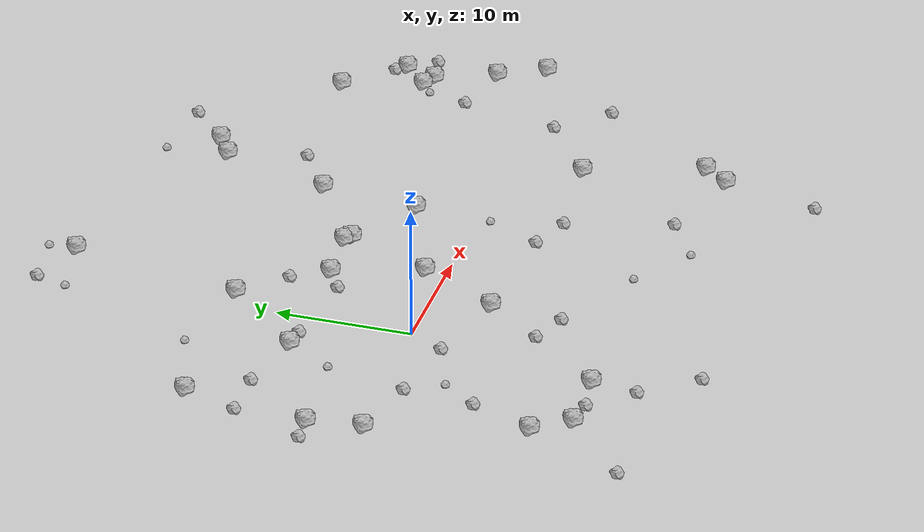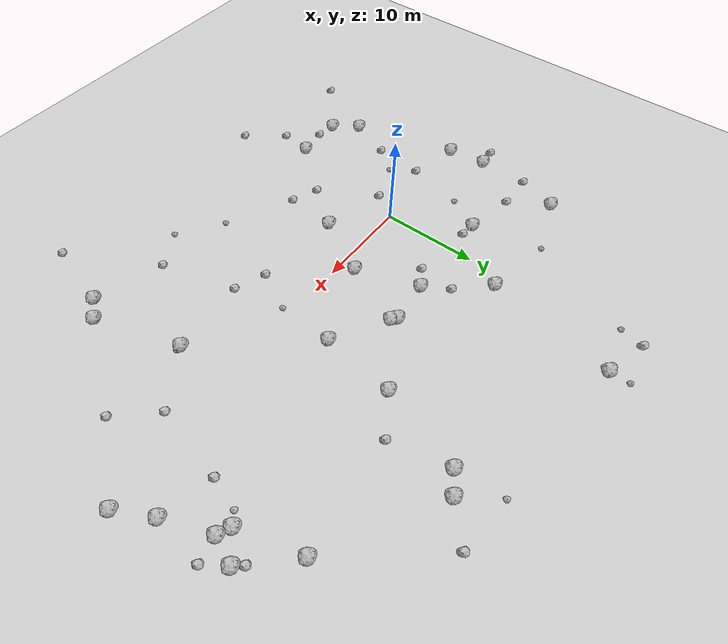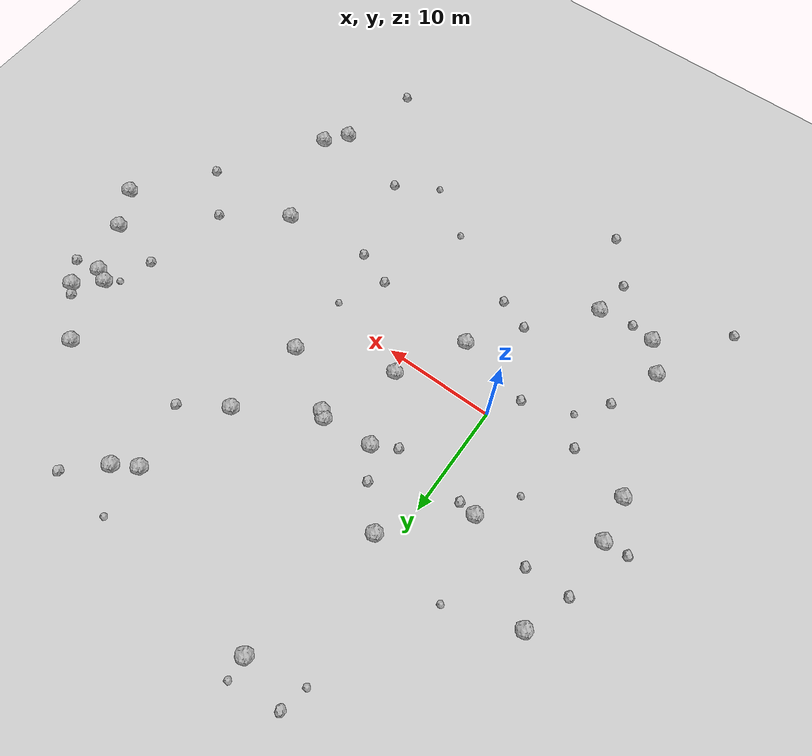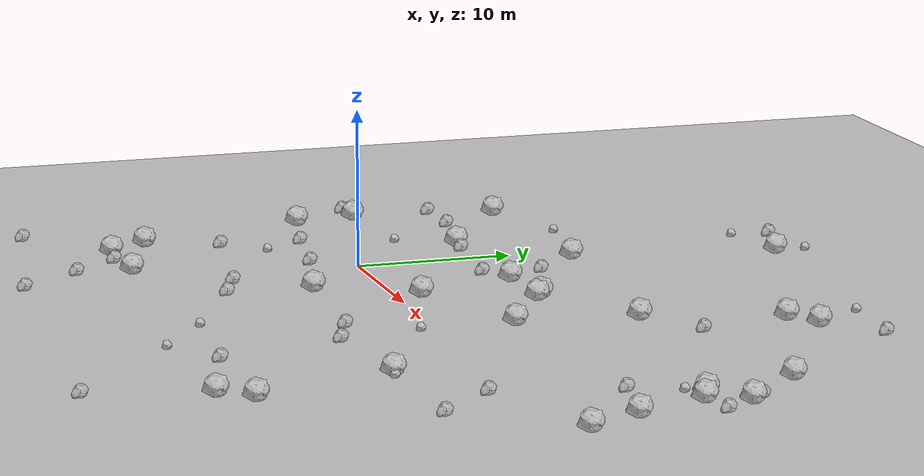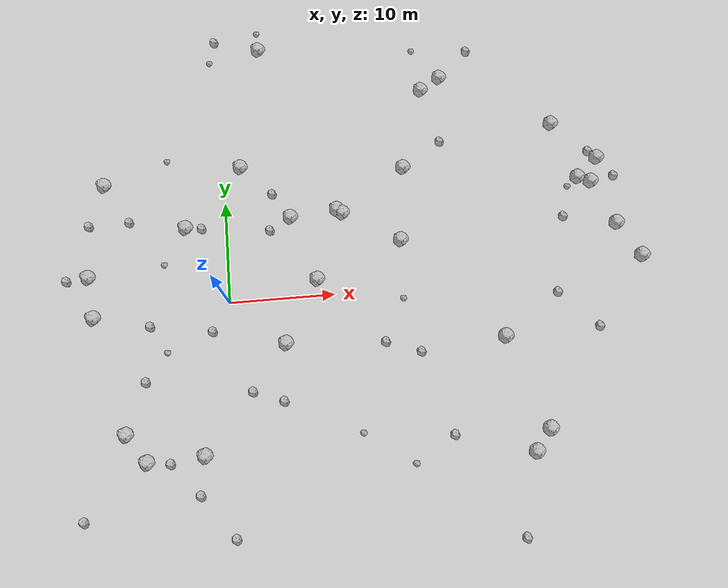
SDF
<sdf version="1.6">
 <world name="default">
  <include><uri>model://custom_ground</uri></include>
  <include><uri>model://sun</uri></include>
  <model name="rock1_0_0">
   <include><uri>model://rock1</uri><pose>-9.71555381848496 -11.462800521649633 0.5 0 0 0</pose></include>
  </model>
  <model name="rock1_0_1">
   <include><uri>model://rock1</uri><pose>33.012249444664626 15.732189921044622 0.5 0 0 0</pose></include>
  </model>
  <model name="rock1_0_2">
   <include><uri>model://rock1</uri><pose>-2.6610322005692346 -13.892146646583857 0.5 0 0 0</pose></include>
  </model>
  <model name="rock1_0_3">
   <include><uri>model://rock1</uri><pose>11.343023795016094 8.002617359840393 0.5 0 0 0</pose></include>
  </model>
  <model name="rock1_0_4">
   <include><uri>model://rock1</uri><pose>26.891499211915253 -15.973941546690448 0.5 0 0 0</pose></include>
  </model>
  <model name="rock1_0_5">
   <include><uri>model://rock1</uri><pose>-3.9119274705224036 7.720105783129689 0.5 0 0 0</pose></include>
  </model>
  <model name="rock1_0_6">
   <include><uri>model://rock1</uri><pose>37.793475113117815 4.770822017862116 0.5 0 0 0</pose></include>
  </model>
  <model name="rock1_0_7">
   <include><uri>model://rock1</uri><pose>36.00149346547439 9.25231353364763 0.5 0 0 0</pose></include>
  </model>
  <model name="rock1_0_8">
   <include><uri>model://rock1</uri><pose>-11.788210217342206 12.76895249197841 0.5 0 0 0</pose></include>
  </model>
  <model name="rock1_0_9">
   <include><uri>model://rock1</uri><pose>-7.843985306245839 -14.037542996310147 0.5 0 0 0</pose></include>
  </model>
  <model name="rock1_0_10">
   <include><uri>model://rock1</uri><pose>4.049735617796667 26.567867269111986 0.5 0 0 0</pose></include>
  </model>
  <model name="rock1_0_11">
   <include><uri>model://rock1</uri><pose>8.454805740521142 1.564320129808202 0.5 0 0 0</pose></include>
  </model>
  <model name="rock1_0_12">
   <include><uri>model://rock1</uri><pose>17.706860088040706 12.249815178051726 0.5 0 0 0</pose></include>
  </model>
  <model name="rock1_0_13">
   <include><uri>model://rock1</uri><pose>6.289367280612904 7.993429714953152 0.5 0 0 0</pose></include>
  </model>
  <model name="rock1_0_14">
   <include><uri>model://rock1</uri><pose>16.75083652591755 4.8069718419666785 0.5 0 0 0</pose></include>
  </model>
  <model name="rock1_0_15">
   <include><uri>model://rock1</uri><pose>39.66175471702922 1.3362825235050835 0.5 0 0 0</pose></include>
  </model>
  <model name="rock1_0_16">
   <include><uri>model://rock1</uri><pose>36.9854462198996 11.69511256799273 0.5 0 0 0</pose></include>
  </model>
  <model name="rock1_0_17">
   <include><uri>model://rock1</uri><pose>10.832708672551512 8.42902878941868 0.5 0 0 0</pose></include>
  </model>
  <model name="rock1_0_18">
   <include><uri>model://rock1</uri><pose>28.430271240194656 -14.085184852996552 0.5 0 0 0</pose></include>
  </model>
  <model name="rock1_0_19">
   <include><uri>model://rock1</uri><pose>34.779293022524094 9.793548759535028 0.5 0 0 0</pose></include>
  </model>
  <model name="rock1_0_20">
   <include><uri>model://rock1</uri><pose>20.354891933034942 20.570803612729 0.5 0 0 0</pose></include>
  </model>
  <model name="rock1_0_21">
   <include><uri>model://rock1</uri><pose>1.6570915613505264 13.608310073899268 0.5 0 0 0</pose></include>
  </model>
  <model name="rock1_0_22">
   <include><uri>model://rock1</uri><pose>5.131230323033968 -4.332906194362913 0.5 0 0 0</pose></include>
  </model>
  <model name="rock1_0_23">
   <include><uri>model://rock1</uri><pose>22.383828166170908 21.811605074972597 0.5 0 0 0</pose></include>
  </model>
  <model name="rock1_0_24">
   <include><uri>model://rock1</uri><pose>25.565425479144047 -5.383615214027234 0.5 0 0 0</pose></include>
  </model>
  <model name="rock1_0_25">
   <include><uri>model://rock1</uri><pose>-13.256966389951419 3.5022745994535853 0.5 0 0 0</pose></include>
  </model>
  <model name="rock1_0_26">
   <include><uri>model://rock1</uri><pose>-12.73764506008726 -0.4814348297298352 0.5 0 0 0</pose></include>
  </model>
  <model name="rock2_0_0">
   <include><uri>model://rock2</uri><pose>-0.193031894374613 -21.17150524556228 0.3 0 0 0</pose></include>
  </model>
  <model name="rock2_0_1">
   <include><uri>model://rock2</uri><pose>-3.1879779696785313 -17.294899190971044 0.3 0 0 0</pose></include>
  </model>
  <model name="rock2_0_2">
   <include><uri>model://rock2</uri><pose>14.367108066171852 -4.976253858326544 0.3 0 0 0</pose></include>
  </model>
  <model name="rock2_0_3">
   <include><uri>model://rock2</uri><pose>4.198408401762421 6.830315012326025 0.3 0 0 0</pose></include>
  </model>
  <model name="rock2_0_4">
   <include><uri>model://rock2</uri><pose>-9.3930427309923 8.779824626320568 0.3 0 0 0</pose></include>
  </model>
  <model name="rock2_0_5">
   <include><uri>model://rock2</uri><pose>38.35460840925422 9.691162270387267 0.3 0 0 0</pose></include>
  </model>
  <model name="rock2_0_6">
   <include><uri>model://rock2</uri><pose>-5.8002079999645435 -14.335907675741668 0.3 0 0 0</pose></include>
  </model>
  <model name="rock2_0_7">
   <include><uri>model://rock2</uri><pose>36.24455740181333 12.503229338205571 0.3 0 0 0</pose></include>
  </model>
  <model name="rock2_0_8">
   <include><uri>model://rock2</uri><pose>-7.482483047048142 -1.7112312540761678 0.3 0 0 0</pose></include>
  </model>
  <model name="rock2_0_9">
   <include><uri>model://rock2</uri><pose>24.96900393877643 -23.161453676621232 0.3 0 0 0</pose></include>
  </model>
  <model name="rock2_0_10">
   <include><uri>model://rock2</uri><pose>-0.5074817209366032 27.925603957213603 0.3 0 0 0</pose></include>
  </model>
  <model name="rock2_0_11">
   <include><uri>model://rock2</uri><pose>-1.6628222340463097 -2.660903800111619 0.3 0 0 0</pose></include>
  </model>
  <model name="rock2_0_12">
   <include><uri>model://rock2</uri><pose>17.574762148474115 -6.158641049243343 0.3 0 0 0</pose></include>
  </model>
  <model name="rock2_0_13">
   <include><uri>model://rock2</uri><pose>4.625832917898663 -9.65438918216902 0.3 0 0 0</pose></include>
  </model>
  <model name="rock2_0_14">
   <include><uri>model://rock2</uri><pose>-13.443121035230767 -18.671103302931577 0.3 0 0 0</pose></include>
  </model>
  <model name="rock2_0_15">
   <include><uri>model://rock2</uri><pose>32.7352443328051 5.881119437303255 0.3 0 0 0</pose></include>
  </model>
  <model name="rock2_0_16">
   <include><uri>model://rock2</uri><pose>25.496737226937306 24.702843289262745 0.3 0 0 0</pose></include>
  </model>
  <model name="rock2_0_17">
   <include><uri>model://rock2</uri><pose>34.4818310107314 -5.1766480054246955 0.3 0 0 0</pose></include>
  </model>
  <model name="rock2_0_18">
   <include><uri>model://rock2</uri><pose>4.60970853917398 10.562812096201355 0.3 0 0 0</pose></include>
  </model>
  <model name="rock2_0_19">
   <include><uri>model://rock2</uri><pose>21.626145216935683 14.786414000920907 0.3 0 0 0</pose></include>
  </model>
  <model name="rock2_0_20">
   <include><uri>model://rock2</uri><pose>-15.379537570443855 3.3324368677108396 0.3 0 0 0</pose></include>
  </model>
  <model name="rock2_0_21">
   <include><uri>model://rock2</uri><pose>-7.948083935329869 -6.879009140253249 0.3 0 0 0</pose></include>
  </model>
  <model name="rock2_0_22">
   <include><uri>model://rock2</uri><pose>19.774315316027874 -13.928975209632245 0.3 0 0 0</pose></include>
  </model>
  <model name="rock2_0_23">
   <include><uri>model://rock2</uri><pose>31.073368216654075 -1.5937646047993184 0.3 0 0 0</pose></include>
  </model>
  <model name="rock2_0_24">
   <include><uri>model://rock2</uri><pose>-13.300573741668932 8.696321581078053 0.3 0 0 0</pose></include>
  </model>
  <model name="rock2_0_25">
   <include><uri>model://rock2</uri><pose>1.8192048683438529 -8.565443580151438 0.3 0 0 0</pose></include>
  </model>
  <model name="rock2_0_26">
   <include><uri>model://rock2</uri><pose>-2.3911151887175244 7.554301789438881 0.3 0 0 0</pose></include>
  </model>
  <model name="rock3_0_0">
   <include><uri>model://rock3</uri><pose>-6.098758536424624 4.204453950853448 0.2 0 0 0</pose></include>
  </model>
  <model name="rock3_0_1">
   <include><uri>model://rock3</uri><pose>19.864726823202908 25.21635707290327 0.2 0 0 0</pose></include>
  </model>
  <model name="rock3_0_2">
   <include><uri>model://rock3</uri><pose>-5.662739801054137 14.914763377907583 0.2 0 0 0</pose></include>
  </model>
  <model name="rock3_0_3">
   <include><uri>model://rock3</uri><pose>-5.93577178517392 -4.310459242684857 0.2 0 0 0</pose></include>
  </model>
  <model name="rock3_0_4">
   <include><uri>model://rock3</uri><pose>33.663894922679795 8.92634262247772 0.2 0 0 0</pose></include>
  </model>
  <model name="rock3_0_5">
   <include><uri>model://rock3</uri><pose>16.427406688190324 -0.9708809356751615 0.2 0 0 0</pose></include>
  </model>
  <model name="rock3_0_6">
   <include><uri>model://rock3</uri><pose>3.914921150732802 28.61833618083378 0.2 0 0 0</pose></include>
  </model>
  <model name="rock3_0_7">
   <include><uri>model://rock3</uri><pose>11.573813010739912 -13.091859964697868 0.2 0 0 0</pose></include>
  </model>
  <model name="rock3_0_8">
   <include><uri>model://rock3</uri><pose>-1.0961135472465031 25.554846052672538 0.2 0 0 0</pose></include>
  </model>
  <model name="rock3_0_9">
   <include><uri>model://rock3</uri><pose>26.022047706967122 -5.452999875553992 0.2 0 0 0</pose></include>
  </model>
  <model name="rock3_0_10">
   <include><uri>model://rock3</uri><pose>16.041357707593185 -16.1587914583108 0.2 0 0 0</pose></include>
  </model>
 </world>
</sdf>
